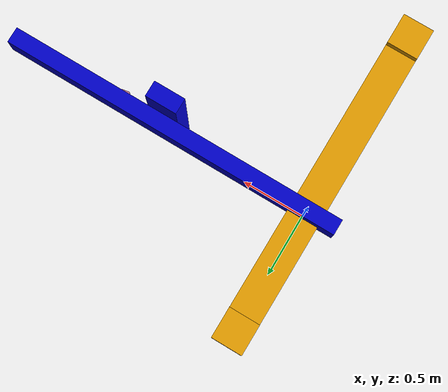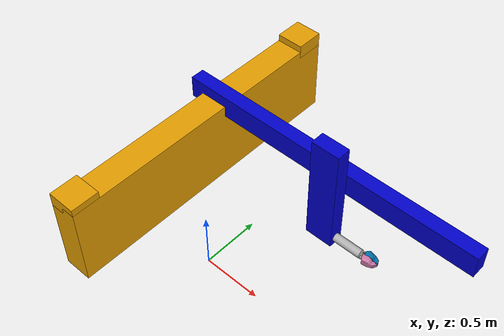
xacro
<?xml version="1.0"?>
<robot name="flexible">
<link name="link1">
<visual>
	<origin xyz="-1 0 0.6"/>
      <geometry>
       <box size="0.2 0.2 0.1"/>
      </geometry>
    </visual>

<visual>
	<origin xyz="0 0 0.3"/>
      <geometry>
       <box size="2.2 0.2 0.6"/>
      </geometry>
    </visual>
 <visual>
	<origin xyz="1 0 0.6"/>
      <geometry>
       <box size="0.2 0.2 0.1"/>
      </geometry>
    </visual>
  </link>

<joint name="joint1" type="prismatic">
    <parent link="link2"/>
    <child link="link1"/>
    <limit effort="1000.0" lower="-0.63" upper="1.06" velocity="0.2"/>
    <origin rpy="0 0 1.57075" xyz="0 0 1"/>
 </joint>

 <link name="link2">

 <visual>
	<origin xyz="0.9 0.2 1.6"/>
	<geometry>
		<box size="2.2 0.1 0.16"/>
    </geometry>
    <material name="blue">
        <color rgba="0 0 .8 1"/>
    </material>
    </visual>
  </link>

<joint name="joint2" type="prismatic">
    <parent link="link2"/>
    <child link="link3"/>
    <limit effort="1000.0" lower="-0.2" upper="0.8" velocity="0.2"/>
    <origin rpy="0 0 0" xyz="0 0 0"/>
 </joint>

 <link name="link3">
    <visual>
	<origin xyz="1 0.1 1.5"/>
	<geometry>
		<box size="0.2 0.1 0.8"/>
    </geometry>
    <material name="blue">
        <color rgba="0 0 .8 1"/>
    </material>
    </visual>
  </link>

<joint name="grip_joint" type="revolute">
    <parent link="link3"/>
    <child link="gripper_pole"/>
    <limit effort="1000.0" lower="0" upper="1.6" velocity="0.2"/>
    <origin rpy="0 0 0" xyz="1.2 0.1 1.15"/>
 </joint>

  <link name="gripper_pole">
    <visual>
      <geometry>
        <cylinder length="0.2" radius=".03"/>
      </geometry>
      <origin rpy="0 1.57075 0 " xyz="0 0 0"/>
      <material name="Gray">
        <color rgba=".7 .7 .7 1"/>
      </material>
    </visual>
  </link>

  <joint name="left_gripper_joint" type="revolute">
    <axis xyz="0 0 1"/>
    <limit effort="1000.0" lower="0.0" upper="0.548" velocity="0.2"/>
    <origin rpy="0 0 0" xyz="0.13 0 0"/>
    <parent link="gripper_pole"/>
    <child link="left_gripper"/>
  </joint>

  <link name="left_gripper">
    <visual>
      <origin rpy="0.0 0 0" xyz="0 0 0"/>
      <geometry>
        <mesh filename="package://pr2_description/meshes/gripper_v0/l_finger.dae"/>
      </geometry>
    </visual>
  </link>

  <joint name="left_tip_joint" type="fixed">
    <parent link="left_gripper"/>
    <child link="left_tip"/>
  </joint>

  <link name="left_tip">
    <visual>
      <origin rpy="0.0 0 0" xyz="0 0 0"/>
      <geometry>
        <mesh filename="package://pr2_description/meshes/gripper_v0/l_finger_tip.dae"/>
      </geometry>
    </visual>
  </link>
---
  <joint name="right_gripper_joint" type="revolute">
    <axis xyz="0 0 -1"/>
    <limit effort="1000.0" lower="0.0" upper="0.548" velocity="0.2"/>
    <origin rpy="0 0 0" xyz="0.13 0 0"/>
    <parent link="gripper_pole"/>
    <child link="right_gripper"/>
  </joint>

  <link name="right_gripper">
    <visual>
      <origin rpy="-3.1415 0 0" xyz="0 0 0"/>
      <geometry>
        <mesh filename="package://pr2_description/meshes/gripper_v0/l_finger.dae"/>
      </geometry>
    </visual>
  </link>

  <joint name="right_tip_joint" type="fixed">
    <parent link="right_gripper"/>
    <child link="right_tip"/>
  </joint>

  <link name="right_tip">
    <visual>
      <origin rpy="-3.1415 0 0" xyz="0 0 0"/>
      <geometry>
        <mesh filename="package://pr2_description/meshes/gripper_v0/l_finger_tip.dae"/>
      </geometry>
    </visual>
  </link>

</robot>
